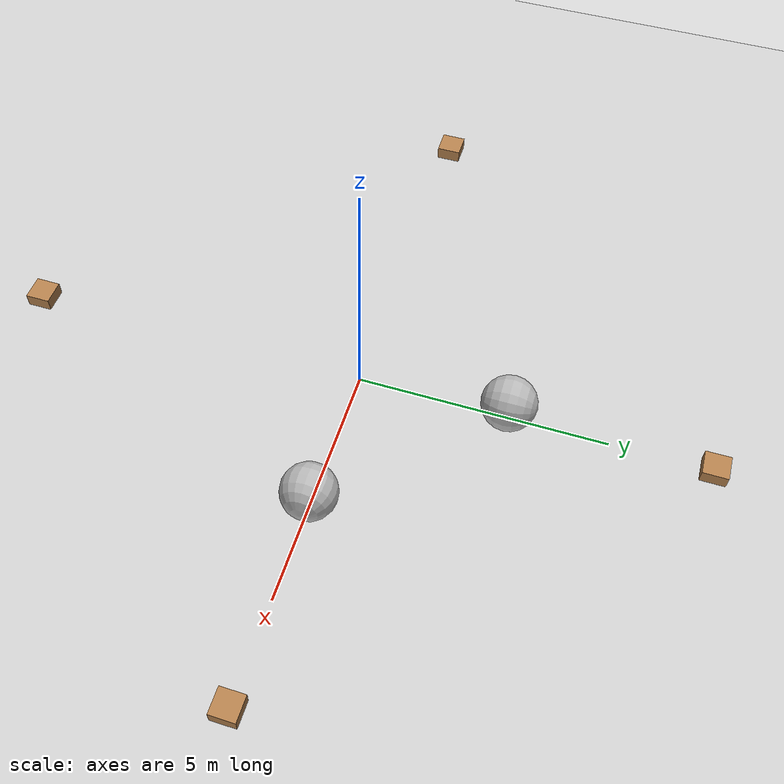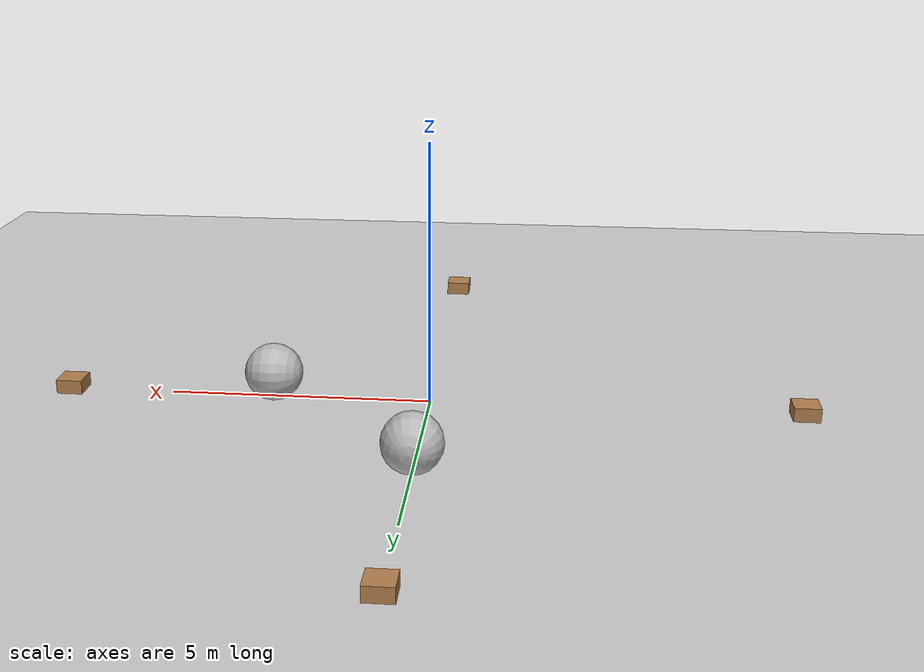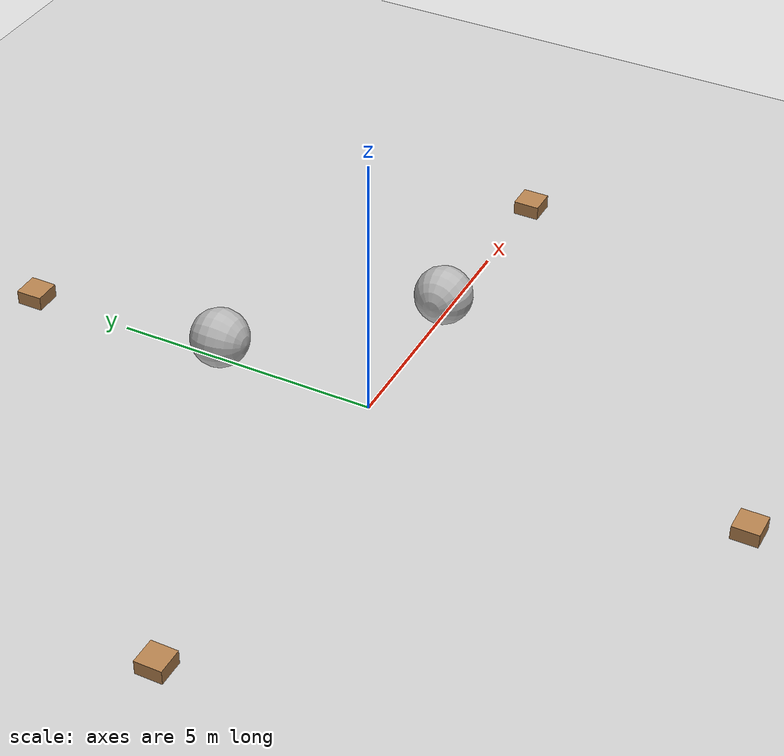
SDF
<sdf version="1.4">
 <world name="default">
  <physics type="ode">
   <max_step_size>0.01</max_step_size>
   <real_time_factor>1</real_time_factor>
   <real_time_update_rate>100</real_time_update_rate>
   <gravity>0 0 -9.8</gravity>
  </physics>
  <include>
   <uri>model://ground_plane</uri>
   <static>1</static>
   <link name="link">
    <collision name="collision">
     <geometry><plane><normal>0 0 1</normal><size>100 100</size></plane></geometry>
     <surface><friction><ode><mu>100</mu><mu2>50</mu2></ode></friction></surface>
    </collision>
   </link>
  </include>
  <include><uri>model://sun</uri></include>
  <model name="cubeN">
   <link name="link">
    <collision name="collision"><geometry><box><size>0.5 0.5 0.5</size></box></geometry></collision>
    <visual name="visual">
     <geometry><box><size>0.5 0.5 0.5</size></box></geometry>
     <material>
      <script><uri>file://media/materials/scripts/gazebo.material</uri><name>Gazebo/Wood</name></script>
     </material>
    </visual>
    <velocity_decay><linear>0</linear><angular>0</angular></velocity_decay>
    <inertial>
     <inertia><ixx>1</ixx><ixy>0</ixy><ixz>0</ixz><iyy>1</iyy><iyz>0</iyz><izz>1</izz></inertia>
     <mass>1</mass>
    </inertial>
   </link>
   <pose>7.0 0.0 0.0 0.0 0.0 0.0</pose>
   <static>0</static>
  </model>
  <include><uri>model://ball1</uri><pose>3.00 0.00 0.5 1.5708 0.0 1.5708</pose></include>
  <model name="cubeW">
   <link name="link">
    <collision name="collision"><geometry><box><size>0.5 0.5 0.5</size></box></geometry></collision>
    <visual name="visual">
     <geometry><box><size>0.5 0.5 0.5</size></box></geometry>
     <material>
      <script><uri>file://media/materials/scripts/gazebo.material</uri><name>Gazebo/Wood</name></script>
     </material>
    </visual>
    <velocity_decay><linear>0</linear><angular>0</angular></velocity_decay>
    <inertial>
     <inertia><ixx>1</ixx><ixy>0</ixy><ixz>0</ixz><iyy>1</iyy><iyz>0</iyz><izz>1</izz></inertia>
     <mass>1</mass>
    </inertial>
   </link>
   <pose>0.0 -7.0 0.0 0.0 0.0 0.0</pose>
   <static>0</static>
  </model>
  <model name="cubeS">
   <link name="link">
    <collision name="collision"><geometry><box><size>0.5 0.5 0.5</size></box></geometry></collision>
    <visual name="visual">
     <geometry><box><size>0.5 0.5 0.5</size></box></geometry>
     <material>
      <script><uri>file://media/materials/scripts/gazebo.material</uri><name>Gazebo/Wood</name></script>
     </material>
    </visual>
    <velocity_decay><linear>0</linear><angular>0</angular></velocity_decay>
    <inertial>
     <inertia><ixx>1</ixx><ixy>0</ixy><ixz>0</ixz><iyy>1</iyy><iyz>0</iyz><izz>1</izz></inertia>
     <mass>1</mass>
    </inertial>
   </link>
   <pose>-7.0 0.0 0.0 0.0 0.0 0.0</pose>
   <static>0</static>
  </model>
  <model name="cubeE">
   <link name="link">
    <collision name="collision"><geometry><box><size>0.5 0.5 0.5</size></box></geometry></collision>
    <visual name="visual">
     <geometry><box><size>0.5 0.5 0.5</size></box></geometry>
     <material>
      <script><uri>file://media/materials/scripts/gazebo.material</uri><name>Gazebo/Wood</name></script>
     </material>
    </visual>
    <velocity_decay><linear>0</linear><angular>0</angular></velocity_decay>
    <inertial>
     <inertia><ixx>1</ixx><ixy>0</ixy><ixz>0</ixz><iyy>1</iyy><iyz>0</iyz><izz>1</izz></inertia>
     <mass>1</mass>
    </inertial>
   </link>
   <pose>0.0 7.0 0.0 0.0 0.0 0.0</pose>
   <static>0</static>
  </model>
  <include><uri>model://ball2</uri><pose>0.00 3.00 0.5 -1.5708 3.142 0.0</pose></include>
 </world>
</sdf>

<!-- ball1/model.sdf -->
<sdf version="1.5">
  <model name="ball1">
    <link name="link">
      <inertial>
        <mass>2</mass>
        <inertia>
          <ixx>1</ixx>
          <ixy>0</ixy>
          <ixz>0</ixz>
          <iyy>1</iyy>
          <iyz>0</iyz>
          <izz>1</izz>
        </inertia>
      </inertial>
      <collision name="collision">
        <geometry>
          <sphere>
            <radius>0.55000</radius>
          </sphere>
        </geometry>
        <surface>
       <friction>
         <ode>
           <mu>0.72</mu>
           <mu2>0.72</mu2>
         </ode>
       </friction>
          <bounce/>
          <contact>
            <ode/>
          </contact>
     </surface>
      </collision>
      <visual name="visual">
         <geometry>
          <sphere>
            <radius>0.55000</radius>
          </sphere>
        </geometry>
        <material>
          <script>
            <uri>model://ball1/materials/scripts</uri>
            <uri>model://ball1/materials/textures</uri>
            <name>ball1/Diffuse</name>
          </script>
        </material>
      </visual>
    </link>
  </model>
</sdf>

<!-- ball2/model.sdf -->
<sdf version="1.5">
  <model name="ball2">
    <link name="link">
      <inertial>
        <mass>2</mass>
        <inertia>
          <ixx>1</ixx>
          <ixy>0</ixy>
          <ixz>0</ixz>
          <iyy>1</iyy>
          <iyz>0</iyz>
          <izz>1</izz>
        </inertia>
      </inertial>
      <collision name="collision">
        <geometry>
          <sphere>
            <radius>0.55000</radius>
          </sphere>
        </geometry>
        <surface>
       <friction>
         <ode>
           <mu>0.72</mu>
           <mu2>0.72</mu2>
         </ode>
       </friction>
          <bounce/>
          <contact>
            <ode/>
          </contact>
     </surface>
      </collision>
      <visual name="visual">
         <geometry>
          <sphere>
            <radius>0.55000</radius>
          </sphere>
        </geometry>
        <material>
          <script>
            <uri>model://ball2/materials/scripts</uri>
            <uri>model://ball2/materials/textures</uri>
            <name>ball2/Diffuse</name>
          </script>
        </material>
      </visual>
    </link>
  </model>
</sdf>
